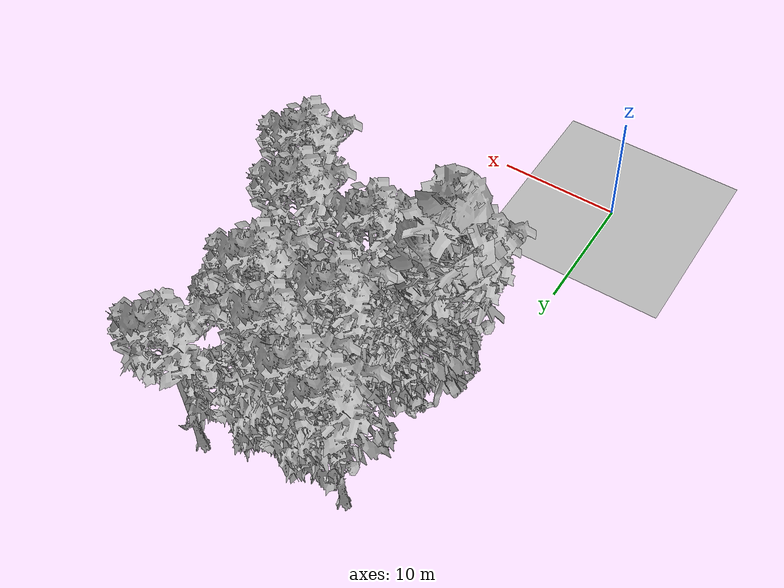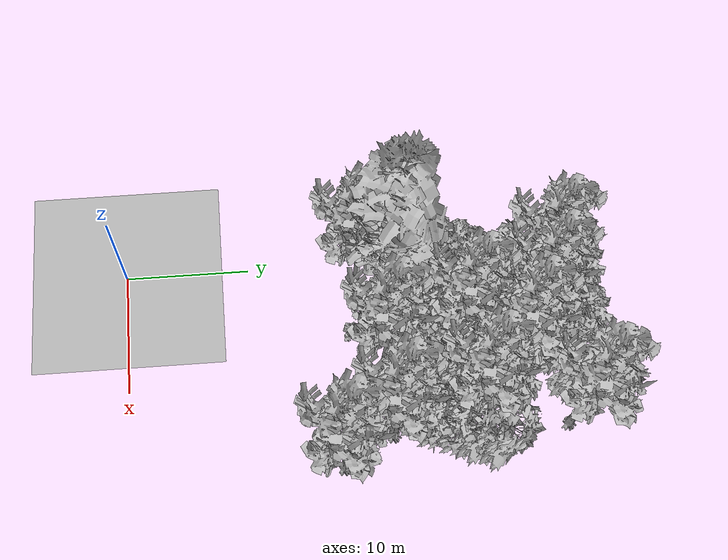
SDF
<sdf version="1.7">
 <world name="default">
  <model name="ground_plane">
   <static>1</static>
   <link name="link">
    <collision name="collision">
     <geometry><plane><normal>0 0 1</normal><size>70 70</size></plane></geometry>
     <surface><contact><ode><min_depth>0.01</min_depth><max_vel>0</max_vel></ode></contact></surface>
    </collision>
    <visual name="grass">
     <cast_shadows>0</cast_shadows>
     <geometry>
      <mesh>
       <scale>0.29000000000000004 0.29000000000000004 0.1</scale>
       <uri>file://grass_plane/meshes/grass_plane.dae</uri>
      </mesh>
     </geometry>
    </visual>
   </link>
  </model>
  <model name="Tree 9">
   <static>1</static>
   <pose>13.415027923321624 27.199101276383594 0 1.57079 -0 0</pose>
   <link name="link">
    <collision name="collision">
     <geometry><mesh><scale>5 5 5</scale><uri>model://tree_9/meshes/tree_9.obj</uri></mesh></geometry>
    </collision>
    <visual name="visual">
     <geometry><mesh><scale>5 5 5</scale><uri>model://tree_9/meshes/tree_9.obj</uri></mesh></geometry>
    </visual>
   </link>
  </model>
  <model name="Tree 11">
   <static>1</static>
   <pose>5.500935025787392 25.253025258825176 0 1.57079 -0 0</pose>
   <link name="link">
    <collision name="collision">
     <geometry><mesh><scale>5 5 5</scale><uri>model://tree_2/meshes/tree_2.obj</uri></mesh></geometry>
    </collision>
    <visual name="visual">
     <geometry><mesh><scale>5 5 5</scale><uri>model://tree_2/meshes/tree_2.obj</uri></mesh></geometry>
    </visual>
   </link>
  </model>
  <model name="Tree 32">
   <static>1</static>
   <pose>1.9568784747875654 20.675324576541847 0 1.57079 -0 0</pose>
   <link name="link">
    <collision name="collision">
     <geometry><mesh><scale>5 5 5</scale><uri>model://tree_9/meshes/tree_9.obj</uri></mesh></geometry>
    </collision>
    <visual name="visual">
     <geometry><mesh><scale>5 5 5</scale><uri>model://tree_9/meshes/tree_9.obj</uri></mesh></geometry>
    </visual>
   </link>
  </model>
  <model name="Tree 41">
   <static>1</static>
   <pose>14.884516651010287 20.762939898615905 0 1.57079 -0 0</pose>
   <link name="link">
    <collision name="collision">
     <geometry><mesh><scale>5 5 5</scale><uri>model://tree_9/meshes/tree_9.obj</uri></mesh></geometry>
    </collision>
    <visual name="visual">
     <geometry><mesh><scale>5 5 5</scale><uri>model://tree_9/meshes/tree_9.obj</uri></mesh></geometry>
    </visual>
   </link>
  </model>
  <model name="Tree 44">
   <static>1</static>
   <pose>14.504747621850548 26.423558030565488 0 1.57079 -0 0</pose>
   <link name="link">
    <collision name="collision">
     <geometry><mesh><scale>5 5 5</scale><uri>model://tree_2/meshes/tree_2.obj</uri></mesh></geometry>
    </collision>
    <visual name="visual">
     <geometry><mesh><scale>5 5 5</scale><uri>model://tree_2/meshes/tree_2.obj</uri></mesh></geometry>
    </visual>
   </link>
  </model>
  <model name="Tree 67">
   <static>1</static>
   <pose>7.592017118218486 26.667175898543924 0 1.57079 -0 0</pose>
   <link name="link">
    <collision name="collision">
     <geometry><mesh><scale>5 5 5</scale><uri>model://tree_9/meshes/tree_9.obj</uri></mesh></geometry>
    </collision>
    <visual name="visual">
     <geometry><mesh><scale>5 5 5</scale><uri>model://tree_9/meshes/tree_9.obj</uri></mesh></geometry>
    </visual>
   </link>
  </model>
  <model name="Tree 70">
   <static>1</static>
   <pose>14.854279379803934 34.698907219520294 0 1.57079 -0 0</pose>
   <link name="link">
    <collision name="collision">
     <geometry><mesh><scale>5 5 5</scale><uri>model://tree_9/meshes/tree_9.obj</uri></mesh></geometry>
    </collision>
    <visual name="visual">
     <geometry><mesh><scale>5 5 5</scale><uri>model://tree_9/meshes/tree_9.obj</uri></mesh></geometry>
    </visual>
   </link>
  </model>
  <model name="Tree 76">
   <static>1</static>
   <pose>9.839276248299505 32.22622432474738 0 1.57079 -0 0</pose>
   <link name="link">
    <collision name="collision">
     <geometry><mesh><scale>5 5 5</scale><uri>model://tree_2/meshes/tree_2.obj</uri></mesh></geometry>
    </collision>
    <visual name="visual">
     <geometry><mesh><scale>5 5 5</scale><uri>model://tree_2/meshes/tree_2.obj</uri></mesh></geometry>
    </visual>
   </link>
  </model>
  <model name="Tree 84">
   <static>1</static>
   <pose>3.6873097588375217 33.08618917910353 0 1.57079 -0 0</pose>
   <link name="link">
    <collision name="collision">
     <geometry><mesh><scale>5 5 5</scale><uri>model://tree_9/meshes/tree_9.obj</uri></mesh></geometry>
    </collision>
    <visual name="visual">
     <geometry><mesh><scale>5 5 5</scale><uri>model://tree_9/meshes/tree_9.obj</uri></mesh></geometry>
    </visual>
   </link>
  </model>
  <model name="Tree 94">
   <static>1</static>
   <pose>1.9286635606088964 18.798018235209405 0 1.57079 -0 0</pose>
   <link name="link">
    <collision name="collision">
     <geometry><mesh><scale>5 5 5</scale><uri>model://tree_9/meshes/tree_9.obj</uri></mesh></geometry>
    </collision>
    <visual name="visual">
     <geometry><mesh><scale>5 5 5</scale><uri>model://tree_9/meshes/tree_9.obj</uri></mesh></geometry>
    </visual>
   </link>
  </model>
  <model name="Tree 111">
   <static>1</static>
   <pose>13.926826672179892 24.86939369991176 0 1.57079 -0 0</pose>
   <link name="link">
    <collision name="collision">
     <geometry><mesh><scale>5 5 5</scale><uri>model://tree_2/meshes/tree_2.obj</uri></mesh></geometry>
    </collision>
    <visual name="visual">
     <geometry><mesh><scale>5 5 5</scale><uri>model://tree_2/meshes/tree_2.obj</uri></mesh></geometry>
    </visual>
   </link>
  </model>
  <model name="Tree 121">
   <static>1</static>
   <pose>9.694469430419673 30.57041569505718 0 1.57079 -0 0</pose>
   <link name="link">
    <collision name="collision">
     <geometry><mesh><scale>5 5 5</scale><uri>model://tree_9/meshes/tree_9.obj</uri></mesh></geometry>
    </collision>
    <visual name="visual">
     <geometry><mesh><scale>5 5 5</scale><uri>model://tree_9/meshes/tree_9.obj</uri></mesh></geometry>
    </visual>
   </link>
  </model>
  <model name="Tree 123">
   <static>1</static>
   <pose>8.00728694090099 27.60758013675506 0 1.57079 -0 0</pose>
   <link name="link">
    <collision name="collision">
     <geometry><mesh><scale>5 5 5</scale><uri>model://tree_2/meshes/tree_2.obj</uri></mesh></geometry>
    </collision>
    <visual name="visual">
     <geometry><mesh><scale>5 5 5</scale><uri>model://tree_2/meshes/tree_2.obj</uri></mesh></geometry>
    </visual>
   </link>
  </model>
  <model name="Tree 129">
   <static>1</static>
   <pose>9.047904992448991 20.48705791140693 0 1.57079 -0 0</pose>
   <link name="link">
    <collision name="collision">
     <geometry><mesh><scale>5 5 5</scale><uri>model://tree_9/meshes/tree_9.obj</uri></mesh></geometry>
    </collision>
    <visual name="visual">
     <geometry><mesh><scale>5 5 5</scale><uri>model://tree_9/meshes/tree_9.obj</uri></mesh></geometry>
    </visual>
   </link>
  </model>
  <model name="Tree 130">
   <static>1</static>
   <pose>6.369968427444142 32.43980948957902 0 1.57079 -0 0</pose>
   <link name="link">
    <collision name="collision">
     <geometry><mesh><scale>5 5 5</scale><uri>model://tree_9/meshes/tree_9.obj</uri></mesh></geometry>
    </collision>
    <visual name="visual">
     <geometry><mesh><scale>5 5 5</scale><uri>model://tree_9/meshes/tree_9.obj</uri></mesh></geometry>
    </visual>
   </link>
  </model>
  <model name="Tree 163">
   <static>1</static>
   <pose>6.061808577443976 32.352269606885486 0 1.57079 -0 0</pose>
   <link name="link">
    <collision name="collision">
     <geometry><mesh><scale>5 5 5</scale><uri>model://tree_2/meshes/tree_2.obj</uri></mesh></geometry>
    </collision>
    <visual name="visual">
     <geometry><mesh><scale>5 5 5</scale><uri>model://tree_2/meshes/tree_2.obj</uri></mesh></geometry>
    </visual>
   </link>
  </model>
  <model name="Tree 205">
   <static>1</static>
   <pose>2.9044785345516217 20.983521481684114 0 1.57079 -0 0</pose>
   <link name="link">
    <collision name="collision">
     <geometry><mesh><scale>5 5 5</scale><uri>model://tree_4/meshes/tree_4.obj</uri></mesh></geometry>
    </collision>
    <visual name="visual">
     <geometry><mesh><scale>5 5 5</scale><uri>model://tree_4/meshes/tree_4.obj</uri></mesh></geometry>
    </visual>
   </link>
  </model>
  <model name="Tree 216">
   <static>1</static>
   <pose>8.649407555407286 28.112997666667752 0 1.57079 -0 0</pose>
   <link name="link">
    <collision name="collision">
     <geometry><mesh><scale>5 5 5</scale><uri>model://tree_2/meshes/tree_2.obj</uri></mesh></geometry>
    </collision>
    <visual name="visual">
     <geometry><mesh><scale>5 5 5</scale><uri>model://tree_2/meshes/tree_2.obj</uri></mesh></geometry>
    </visual>
   </link>
  </model>
  <model name="Tree 238">
   <static>1</static>
   <pose>17.213262137464916 16.690989329840626 0 1.57079 -0 0</pose>
   <link name="link">
    <collision name="collision">
     <geometry><mesh><scale>5 5 5</scale><uri>model://tree_9/meshes/tree_9.obj</uri></mesh></geometry>
    </collision>
    <visual name="visual">
     <geometry><mesh><scale>5 5 5</scale><uri>model://tree_9/meshes/tree_9.obj</uri></mesh></geometry>
    </visual>
   </link>
  </model>
  <model name="Tree 244">
   <static>1</static>
   <pose>4.835330016735021 24.31053225512985 0 1.57079 -0 0</pose>
   <link name="link">
    <collision name="collision">
     <geometry><mesh><scale>5 5 5</scale><uri>model://tree_2/meshes/tree_2.obj</uri></mesh></geometry>
    </collision>
    <visual name="visual">
     <geometry><mesh><scale>5 5 5</scale><uri>model://tree_2/meshes/tree_2.obj</uri></mesh></geometry>
    </visual>
   </link>
  </model>
  <model name="Bush 1">
   <static>1</static>
   <pose>4.008989028578739 23.955368822208648 0 1.57079 -0 0</pose>
   <link name="link">
    <collision name="collision">
     <geometry><mesh><scale>2 2 2</scale><uri>model://bush_2/meshes/bush_2.obj</uri></mesh></geometry>
    </collision>
    <visual name="visual">
     <geometry><mesh><scale>5 5 5</scale><uri>model://bush_2/meshes/bush_2.obj</uri></mesh></geometry>
    </visual>
   </link>
  </model>
  <model name="Bush 7">
   <static>1</static>
   <pose>9.95013624507071 27.13983809008858 0 1.57079 -0 0</pose>
   <link name="link">
    <collision name="collision">
     <geometry><mesh><scale>2 2 2</scale><uri>model://bush_2/meshes/bush_2.obj</uri></mesh></geometry>
    </collision>
    <visual name="visual">
     <geometry><mesh><scale>5 5 5</scale><uri>model://bush_2/meshes/bush_2.obj</uri></mesh></geometry>
    </visual>
   </link>
  </model>
  <model name="Bush 11">
   <static>1</static>
   <pose>5.643076309452603 18.733398987850038 0 1.57079 -0 0</pose>
   <link name="link">
    <collision name="collision">
     <geometry><mesh><scale>2 2 2</scale><uri>model://bush_2/meshes/bush_2.obj</uri></mesh></geometry>
    </collision>
    <visual name="visual">
     <geometry><mesh><scale>5 5 5</scale><uri>model://bush_2/meshes/bush_2.obj</uri></mesh></geometry>
    </visual>
   </link>
  </model>
  <model name="Bush 22">
   <static>1</static>
   <pose>14.12861421038263 24.766575303572182 0 1.57079 -0 0</pose>
   <link name="link">
    <collision name="collision">
     <geometry><mesh><scale>2 2 2</scale><uri>model://bush_2/meshes/bush_2.obj</uri></mesh></geometry>
    </collision>
    <visual name="visual">
     <geometry><mesh><scale>5 5 5</scale><uri>model://bush_2/meshes/bush_2.obj</uri></mesh></geometry>
    </visual>
   </link>
  </model>
  <model name="Bush 33">
   <static>1</static>
   <pose>13.036733580810761 18.763284932719287 0 1.57079 -0 0</pose>
   <link name="link">
    <collision name="collision">
     <geometry><mesh><scale>2 2 2</scale><uri>model://bush_2/meshes/bush_2.obj</uri></mesh></geometry>
    </collision>
    <visual name="visual">
     <geometry><mesh><scale>5 5 5</scale><uri>model://bush_2/meshes/bush_2.obj</uri></mesh></geometry>
    </visual>
   </link>
  </model>
  <model name="Bush 59">
   <static>1</static>
   <pose>4.401795713310555 19.405902089830548 0 1.57079 -0 0</pose>
   <link name="link">
    <collision name="collision">
     <geometry><mesh><scale>2 2 2</scale><uri>model://bush_4/meshes/bush_4.obj</uri></mesh></geometry>
    </collision>
    <visual name="visual">
     <geometry><mesh><scale>5 5 5</scale><uri>model://bush_4/meshes/bush_4.obj</uri></mesh></geometry>
    </visual>
   </link>
  </model>
 </world>
</sdf>
